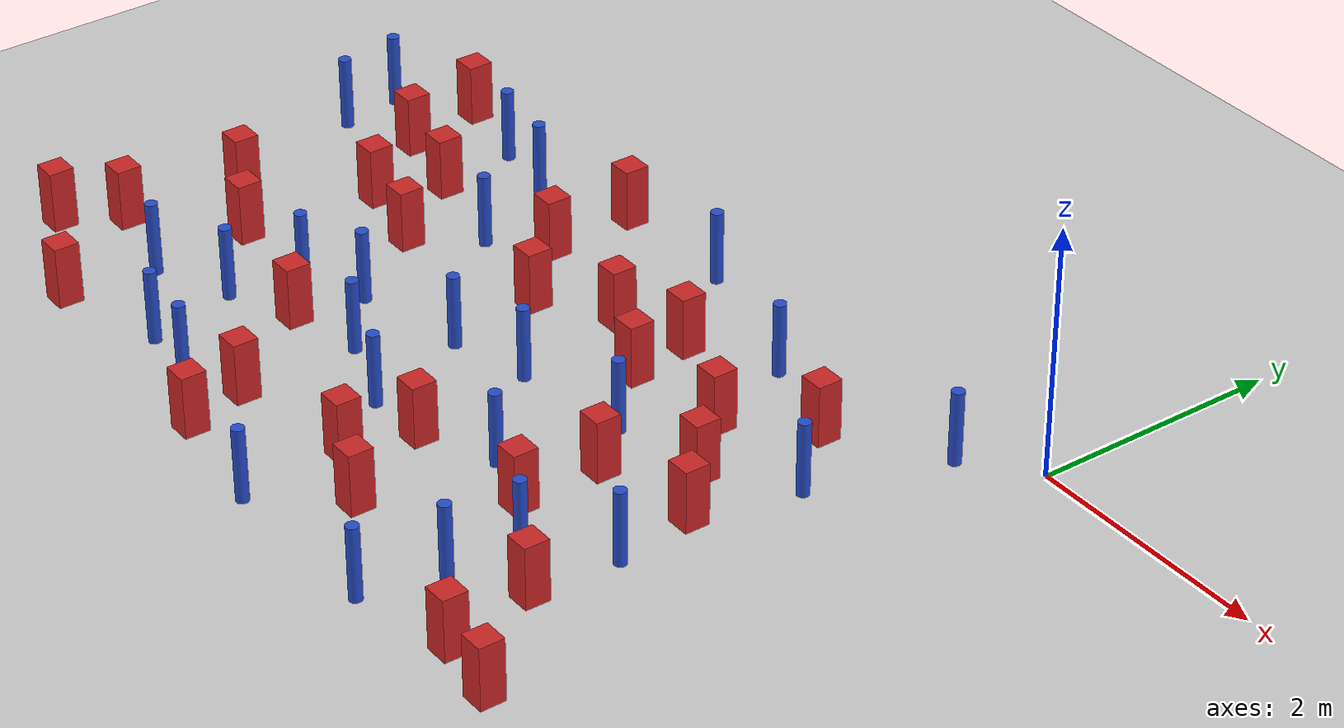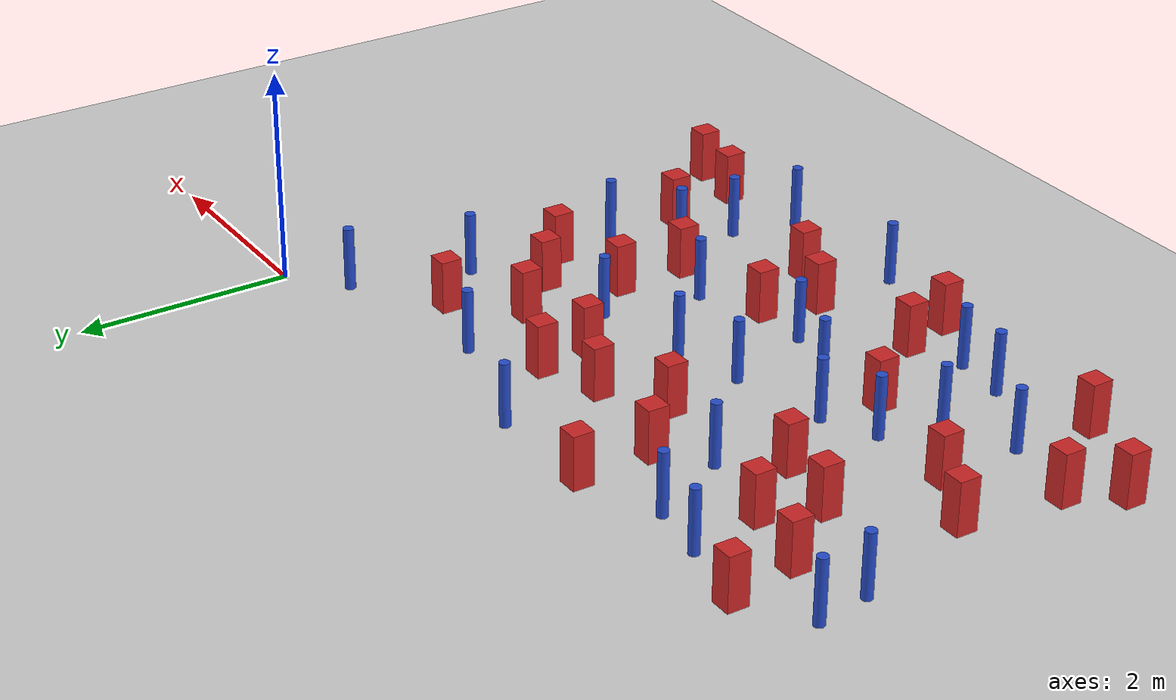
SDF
<sdf version="1.6">
 <world name="default">
  <model name="ground_plane">
   <static>1</static>
   <link name="link">
    <collision name="collision">
     <geometry><plane><normal>0 0 1</normal><size>100 100</size></plane></geometry>
     <surface><friction><ode><mu>100</mu><mu2>50</mu2></ode></friction></surface>
    </collision>
    <visual name="visual">
     <cast_shadows>0</cast_shadows>
     <geometry><plane><normal>0 0 1</normal><size>100 100</size></plane></geometry>
     <material>
      <ambient>1.0 1.0 1.0 1.0</ambient>
      <diffuse>0.8 0.8 0.8 1.0</diffuse>
      <specular>0.01 0.01 0.01 1.000000</specular>
     </material>
    </visual>
   </link>
  </model>
  <model name="pole_obstacle2">
   <static>true</static>
   <pose>-3.00983477498 -4.61173745461 7.38925637345e-09 -8.47170692798e-08 1.24976765033e-08 -1.74513093019e-07</pose>
   <link name="link">
    <pose>0 0 0.3 0 -0 0</pose>
    <inertial>
     <mass>1</mass>
     <inertia><ixx>0.145833</ixx><ixy>0</ixy><ixz>0</ixz><iyy>0.145833</iyy><iyz>0</iyz><izz>0.125</izz></inertia>
    </inertial>
    <collision name="collision">
     <geometry><cylinder><radius>0.05</radius><length>.6</length></cylinder></geometry>
    </collision>
    <visual name="visual">
     <geometry><cylinder><radius>0.05</radius><length>.6</length></cylinder></geometry>
     <material>
      <script><name>Gazebo/Blue</name><uri>file://media/materials/scripts/gazebo.material</uri></script>
     </material>
    </visual>
   </link>
  </model>
  <model name="square_post_obstacle10">
   <static>true</static>
   <pose>-4.72876855023 -3.14238741932 1.91545236811e-07 -7.35059704564e-06 1.12565212e-07 2.39332434364e-05</pose>
   <link name="link">
    <pose>0 0 0.25 0 -0 0</pose>
    <inertial>
     <mass>100</mass>
     <inertia>
      <ixx>0.166667</ixx>
      <ixy>0</ixy>
      <ixz>0</ixz>
      <iyy>0.166667</iyy>
      <iyz>0</iyz>
      <izz>0.166667</izz>
     </inertia>
    </inertial>
    <collision name="collision"><geometry><box><size>.2 .2 .5</size></box></geometry></collision>
    <visual name="visual">
     <geometry><box><size>.2 .2 .5</size></box></geometry>
     <material>
      <script><name>Gazebo/Red</name><uri>file://media/materials/scripts/gazebo.material</uri></script>
     </material>
    </visual>
   </link>
  </model>
  <model name="square_post_obstacle11">
   <static>true</static>
   <pose>-6.29754847552 -1.08779055697 1.91545236811e-07 -7.35059704564e-06 1.12565212e-07 2.39332434364e-05</pose>
   <link name="link">
    <pose>0 0 0.25 0 -0 0</pose>
    <inertial>
     <mass>100</mass>
     <inertia>
      <ixx>0.166667</ixx>
      <ixy>0</ixy>
      <ixz>0</ixz>
      <iyy>0.166667</iyy>
      <iyz>0</iyz>
      <izz>0.166667</izz>
     </inertia>
    </inertial>
    <collision name="collision"><geometry><box><size>.2 .2 .5</size></box></geometry></collision>
    <visual name="visual">
     <geometry><box><size>.2 .2 .5</size></box></geometry>
     <material>
      <script><name>Gazebo/Red</name><uri>file://media/materials/scripts/gazebo.material</uri></script>
     </material>
    </visual>
   </link>
  </model>
  <model name="square_post_obstacle20">
   <static>true</static>
   <pose>-4.38597647848 -1.08295122738 1.91545236811e-07 -7.35059704564e-06 1.12565212e-07 2.39332434364e-05</pose>
   <link name="link">
    <pose>0 0 0.25 0 -0 0</pose>
    <inertial>
     <mass>100</mass>
     <inertia>
      <ixx>0.166667</ixx>
      <ixy>0</ixy>
      <ixz>0</ixz>
      <iyy>0.166667</iyy>
      <iyz>0</iyz>
      <izz>0.166667</izz>
     </inertia>
    </inertial>
    <collision name="collision"><geometry><box><size>.2 .2 .5</size></box></geometry></collision>
    <visual name="visual">
     <geometry><box><size>.2 .2 .5</size></box></geometry>
     <material>
      <script><name>Gazebo/Red</name><uri>file://media/materials/scripts/gazebo.material</uri></script>
     </material>
    </visual>
   </link>
  </model>
  <model name="square_post_obstacle21">
   <static>true</static>
   <pose>-3.87190733849 -1.61479346282 1.91545236811e-07 -7.35059704564e-06 1.12565212e-07 2.39332434364e-05</pose>
   <link name="link">
    <pose>0 0 0.25 0 -0 0</pose>
    <inertial>
     <mass>100</mass>
     <inertia>
      <ixx>0.166667</ixx>
      <ixy>0</ixy>
      <ixz>0</ixz>
      <iyy>0.166667</iyy>
      <iyz>0</iyz>
      <izz>0.166667</izz>
     </inertia>
    </inertial>
    <collision name="collision"><geometry><box><size>.2 .2 .5</size></box></geometry></collision>
    <visual name="visual">
     <geometry><box><size>.2 .2 .5</size></box></geometry>
     <material>
      <script><name>Gazebo/Red</name><uri>file://media/materials/scripts/gazebo.material</uri></script>
     </material>
    </visual>
   </link>
  </model>
  <model name="square_post_obstacle25">
   <static>true</static>
   <pose>-4.4060192597 -0.359610525922 1.91545236811e-07 -7.35059704564e-06 1.12565212e-07 2.39332434364e-05</pose>
   <link name="link">
    <pose>0 0 0.25 0 -0 0</pose>
    <inertial>
     <mass>100</mass>
     <inertia>
      <ixx>0.166667</ixx>
      <ixy>0</ixy>
      <ixz>0</ixz>
      <iyy>0.166667</iyy>
      <iyz>0</iyz>
      <izz>0.166667</izz>
     </inertia>
    </inertial>
    <collision name="collision"><geometry><box><size>.2 .2 .5</size></box></geometry></collision>
    <visual name="visual">
     <geometry><box><size>.2 .2 .5</size></box></geometry>
     <material>
      <script><name>Gazebo/Red</name><uri>file://media/materials/scripts/gazebo.material</uri></script>
     </material>
    </visual>
   </link>
  </model>
  <model name="pole_obstacle24">
   <static>true</static>
   <pose>-2.17715369629 -2.05658296814 7.38925637345e-09 -8.47170692798e-08 1.24976764939e-08 -1.74513093025e-07</pose>
   <link name="link">
    <pose>0 0 0.3 0 -0 0</pose>
    <inertial>
     <mass>1</mass>
     <inertia><ixx>0.145833</ixx><ixy>0</ixy><ixz>0</ixz><iyy>0.145833</iyy><iyz>0</iyz><izz>0.125</izz></inertia>
    </inertial>
    <collision name="collision">
     <geometry><cylinder><radius>0.05</radius><length>.6</length></cylinder></geometry>
    </collision>
    <visual name="visual">
     <geometry><cylinder><radius>0.05</radius><length>.6</length></cylinder></geometry>
     <material>
      <script><name>Gazebo/Blue</name><uri>file://media/materials/scripts/gazebo.material</uri></script>
     </material>
    </visual>
   </link>
  </model>
  <model name="pole_obstacle29">
   <static>true</static>
   <pose>-0.498682928571 -0.406219584729 7.38925637345e-09 -8.47170692798e-08 1.24976764903e-08 -1.74513093025e-07</pose>
   <link name="link">
    <pose>0 0 0.3 0 -0 0</pose>
    <inertial>
     <mass>1</mass>
     <inertia><ixx>0.145833</ixx><ixy>0</ixy><ixz>0</ixz><iyy>0.145833</iyy><iyz>0</iyz><izz>0.125</izz></inertia>
    </inertial>
    <collision name="collision">
     <geometry><cylinder><radius>0.05</radius><length>.6</length></cylinder></geometry>
    </collision>
    <visual name="visual">
     <geometry><cylinder><radius>0.05</radius><length>.6</length></cylinder></geometry>
     <material>
      <script><name>Gazebo/Blue</name><uri>file://media/materials/scripts/gazebo.material</uri></script>
     </material>
    </visual>
   </link>
  </model>
  <model name="square_post_obstacle36">
   <static>true</static>
   <pose>-1.40296125747 -1.92769099587 1.91545236811e-07 -7.35059704564e-06 1.12565212e-07 2.39332434364e-05</pose>
   <link name="link">
    <pose>0 0 0.25 0 -0 0</pose>
    <inertial>
     <mass>100</mass>
     <inertia>
      <ixx>0.166667</ixx>
      <ixy>0</ixy>
      <ixz>0</ixz>
      <iyy>0.166667</iyy>
      <iyz>0</iyz>
      <izz>0.166667</izz>
     </inertia>
    </inertial>
    <collision name="collision"><geometry><box><size>.2 .2 .5</size></box></geometry></collision>
    <visual name="visual">
     <geometry><box><size>.2 .2 .5</size></box></geometry>
     <material>
      <script><name>Gazebo/Red</name><uri>file://media/materials/scripts/gazebo.material</uri></script>
     </material>
    </visual>
   </link>
  </model>
  <model name="square_post_obstacle40">
   <static>true</static>
   <pose>-6.92772482105 -3.87513607403 1.91545236811e-07 -7.35059704564e-06 1.12565212e-07 2.39332434364e-05</pose>
   <link name="link">
    <pose>0 0 0.25 0 -0 0</pose>
    <inertial>
     <mass>100</mass>
     <inertia>
      <ixx>0.166667</ixx>
      <ixy>0</ixy>
      <ixz>0</ixz>
      <iyy>0.166667</iyy>
      <iyz>0</iyz>
      <izz>0.166667</izz>
     </inertia>
    </inertial>
    <collision name="collision"><geometry><box><size>.2 .2 .5</size></box></geometry></collision>
    <visual name="visual">
     <geometry><box><size>.2 .2 .5</size></box></geometry>
     <material>
      <script><name>Gazebo/Red</name><uri>file://media/materials/scripts/gazebo.material</uri></script>
     </material>
    </visual>
   </link>
  </model>
  <model name="square_post_obstacle42">
   <static>true</static>
   <pose>-6.65336086577 -3.44983857737 1.91545236811e-07 -7.35059704564e-06 1.12565212e-07 2.39332434364e-05</pose>
   <link name="link">
    <pose>0 0 0.25 0 -0 0</pose>
    <inertial>
     <mass>100</mass>
     <inertia>
      <ixx>0.166667</ixx>
      <ixy>0</ixy>
      <ixz>0</ixz>
      <iyy>0.166667</iyy>
      <iyz>0</iyz>
      <izz>0.166667</izz>
     </inertia>
    </inertial>
    <collision name="collision"><geometry><box><size>.2 .2 .5</size></box></geometry></collision>
    <visual name="visual">
     <geometry><box><size>.2 .2 .5</size></box></geometry>
     <material>
      <script><name>Gazebo/Red</name><uri>file://media/materials/scripts/gazebo.material</uri></script>
     </material>
    </visual>
   </link>
  </model>
  <model name="square_post_obstacle45">
   <static>true</static>
   <pose>-3.96132576098 -4.46214819886 1.91545236811e-07 -7.35059704564e-06 1.12565212e-07 2.39332434364e-05</pose>
   <link name="link">
    <pose>0 0 0.25 0 -0 0</pose>
    <inertial>
     <mass>100</mass>
     <inertia>
      <ixx>0.166667</ixx>
      <ixy>0</ixy>
      <ixz>0</ixz>
      <iyy>0.166667</iyy>
      <iyz>0</iyz>
      <izz>0.166667</izz>
     </inertia>
    </inertial>
    <collision name="collision"><geometry><box><size>.2 .2 .5</size></box></geometry></collision>
    <visual name="visual">
     <geometry><box><size>.2 .2 .5</size></box></geometry>
     <material>
      <script><name>Gazebo/Red</name><uri>file://media/materials/scripts/gazebo.material</uri></script>
     </material>
    </visual>
   </link>
  </model>
  <model name="square_post_obstacle46">
   <static>true</static>
   <pose>-1.28870673673 -0.963701882219 1.91545236811e-07 -7.35059704564e-06 1.12565212e-07 2.39332434364e-05</pose>
   <link name="link">
    <pose>0 0 0.25 0 -0 0</pose>
    <inertial>
     <mass>100</mass>
     <inertia>
      <ixx>0.166667</ixx>
      <ixy>0</ixy>
      <ixz>0</ixz>
      <iyy>0.166667</iyy>
      <iyz>0</iyz>
      <izz>0.166667</izz>
     </inertia>
    </inertial>
    <collision name="collision"><geometry><box><size>.2 .2 .5</size></box></geometry></collision>
    <visual name="visual">
     <geometry><box><size>.2 .2 .5</size></box></geometry>
     <material>
      <script><name>Gazebo/Red</name><uri>file://media/materials/scripts/gazebo.material</uri></script>
     </material>
    </visual>
   </link>
  </model>
  <model name="square_post_obstacle50">
   <static>true</static>
   <pose>-5.61122834696 -1.24509073403 1.91545236811e-07 -7.35059704564e-06 1.12565212e-07 2.39332434364e-05</pose>
   <link name="link">
    <pose>0 0 0.25 0 -0 0</pose>
    <inertial>
     <mass>100</mass>
     <inertia>
      <ixx>0.166667</ixx>
      <ixy>0</ixy>
      <ixz>0</ixz>
      <iyy>0.166667</iyy>
      <iyz>0</iyz>
      <izz>0.166667</izz>
     </inertia>
    </inertial>
    <collision name="collision"><geometry><box><size>.2 .2 .5</size></box></geometry></collision>
    <visual name="visual">
     <geometry><box><size>.2 .2 .5</size></box></geometry>
     <material>
      <script><name>Gazebo/Red</name><uri>file://media/materials/scripts/gazebo.material</uri></script>
     </material>
    </visual>
   </link>
  </model>
  <model name="square_post_obstacle52">
   <static>true</static>
   <pose>-5.93593023955 -2.82614317043 1.91545236811e-07 -7.35059704564e-06 1.12565212e-07 2.39332434364e-05</pose>
   <link name="link">
    <pose>0 0 0.25 0 -0 0</pose>
    <inertial>
     <mass>100</mass>
     <inertia>
      <ixx>0.166667</ixx>
      <ixy>0</ixy>
      <ixz>0</ixz>
      <iyy>0.166667</iyy>
      <iyz>0</iyz>
      <izz>0.166667</izz>
     </inertia>
    </inertial>
    <collision name="collision"><geometry><box><size>.2 .2 .5</size></box></geometry></collision>
    <visual name="visual">
     <geometry><box><size>.2 .2 .5</size></box></geometry>
     <material>
      <script><name>Gazebo/Red</name><uri>file://media/materials/scripts/gazebo.material</uri></script>
     </material>
    </visual>
   </link>
  </model>
  <model name="square_post_obstacle57">
   <static>true</static>
   <pose>-2.73017724607 -1.06685728491 1.91545236811e-07 -7.35059704564e-06 1.12565212e-07 2.39332434364e-05</pose>
   <link name="link">
    <pose>0 0 0.25 0 -0 0</pose>
    <inertial>
     <mass>100</mass>
     <inertia>
      <ixx>0.166667</ixx>
      <ixy>0</ixy>
      <ixz>0</ixz>
      <iyy>0.166667</iyy>
      <iyz>0</iyz>
      <izz>0.166667</izz>
     </inertia>
    </inertial>
    <collision name="collision"><geometry><box><size>.2 .2 .5</size></box></geometry></collision>
    <visual name="visual">
     <geometry><box><size>.2 .2 .5</size></box></geometry>
     <material>
      <script><name>Gazebo/Red</name><uri>file://media/materials/scripts/gazebo.material</uri></script>
     </material>
    </visual>
   </link>
  </model>
  <model name="square_post_obstacle58">
   <static>true</static>
   <pose>-0.253186446477 -4.47760259966 1.91545236811e-07 -7.35059704564e-06 1.12565212e-07 2.39332434364e-05</pose>
   <link name="link">
    <pose>0 0 0.25 0 -0 0</pose>
    <inertial>
     <mass>100</mass>
     <inertia>
      <ixx>0.166667</ixx>
      <ixy>0</ixy>
      <ixz>0</ixz>
      <iyy>0.166667</iyy>
      <iyz>0</iyz>
      <izz>0.166667</izz>
     </inertia>
    </inertial>
    <collision name="collision"><geometry><box><size>.2 .2 .5</size></box></geometry></collision>
    <visual name="visual">
     <geometry><box><size>.2 .2 .5</size></box></geometry>
     <material>
      <script><name>Gazebo/Red</name><uri>file://media/materials/scripts/gazebo.material</uri></script>
     </material>
    </visual>
   </link>
  </model>
  <model name="square_post_obstacle61">
   <static>true</static>
   <pose>-6.42634662121 -0.419795274852 1.91545236811e-07 -7.35059704564e-06 1.12565212e-07 2.39332434364e-05</pose>
   <link name="link">
    <pose>0 0 0.25 0 -0 0</pose>
    <inertial>
     <mass>100</mass>
     <inertia>
      <ixx>0.166667</ixx>
      <ixy>0</ixy>
      <ixz>0</ixz>
      <iyy>0.166667</iyy>
      <iyz>0</iyz>
      <izz>0.166667</izz>
     </inertia>
    </inertial>
    <collision name="collision"><geometry><box><size>.2 .2 .5</size></box></geometry></collision>
    <visual name="visual">
     <geometry><box><size>.2 .2 .5</size></box></geometry>
     <material>
      <script><name>Gazebo/Red</name><uri>file://media/materials/scripts/gazebo.material</uri></script>
     </material>
    </visual>
   </link>
  </model>
  <model name="pole_obstacle83">
   <static>true</static>
   <pose>-4.12613707402 -3.00219053315 7.38925637345e-09 -8.47170692798e-08 1.24976764937e-08 -1.74513093023e-07</pose>
   <link name="link">
    <pose>0 0 0.3 0 -0 0</pose>
    <inertial>
     <mass>1</mass>
     <inertia><ixx>0.145833</ixx><ixy>0</ixy><ixz>0</ixz><iyy>0.145833</iyy><iyz>0</iyz><izz>0.125</izz></inertia>
    </inertial>
    <collision name="collision">
     <geometry><cylinder><radius>0.05</radius><length>.6</length></cylinder></geometry>
    </collision>
    <visual name="visual">
     <geometry><cylinder><radius>0.05</radius><length>.6</length></cylinder></geometry>
     <material>
      <script><name>Gazebo/Blue</name><uri>file://media/materials/scripts/gazebo.material</uri></script>
     </material>
    </visual>
   </link>
  </model>
  <model name="square_post_obstacle81">
   <static>true</static>
   <pose>-0.948691478601 -3.65484917568 1.91545236811e-07 -7.35059704564e-06 1.12565212e-07 2.39332434364e-05</pose>
   <link name="link">
    <pose>0 0 0.25 0 -0 0</pose>
    <inertial>
     <mass>100</mass>
     <inertia>
      <ixx>0.166667</ixx>
      <ixy>0</ixy>
      <ixz>0</ixz>
      <iyy>0.166667</iyy>
      <iyz>0</iyz>
      <izz>0.166667</izz>
     </inertia>
    </inertial>
    <collision name="collision"><geometry><box><size>.2 .2 .5</size></box></geometry></collision>
    <visual name="visual">
     <geometry><box><size>.2 .2 .5</size></box></geometry>
     <material>
      <script><name>Gazebo/Red</name><uri>file://media/materials/scripts/gazebo.material</uri></script>
     </material>
    </visual>
   </link>
  </model>
  <model name="square_post_obstacle82">
   <static>true</static>
   <pose>-1.82060947756 -1.46836751857 1.91545236811e-07 -7.35059704564e-06 1.12565212e-07 2.39332434364e-05</pose>
   <link name="link">
    <pose>0 0 0.25 0 -0 0</pose>
    <inertial>
     <mass>100</mass>
     <inertia>
      <ixx>0.166667</ixx>
      <ixy>0</ixy>
      <ixz>0</ixz>
      <iyy>0.166667</iyy>
      <iyz>0</iyz>
      <izz>0.166667</izz>
     </inertia>
    </inertial>
    <collision name="collision"><geometry><box><size>.2 .2 .5</size></box></geometry></collision>
    <visual name="visual">
     <geometry><box><size>.2 .2 .5</size></box></geometry>
     <material>
      <script><name>Gazebo/Red</name><uri>file://media/materials/scripts/gazebo.material</uri></script>
     </material>
    </visual>
   </link>
  </model>
  <model name="pole_obstacle97">
   <static>true</static>
   <pose>-3.33977045674 -0.333271730781 7.38925637345e-09 -8.471706928e-08 1.24976765172e-08 -1.74513093013e-07</pose>
   <link name="link">
    <pose>0 0 0.3 0 -0 0</pose>
    <inertial>
     <mass>1</mass>
     <inertia><ixx>0.145833</ixx><ixy>0</ixy><ixz>0</ixz><iyy>0.145833</iyy><iyz>0</iyz><izz>0.125</izz></inertia>
    </inertial>
    <collision name="collision">
     <geometry><cylinder><radius>0.05</radius><length>.6</length></cylinder></geometry>
    </collision>
    <visual name="visual">
     <geometry><cylinder><radius>0.05</radius><length>.6</length></cylinder></geometry>
     <material>
      <script><name>Gazebo/Blue</name><uri>file://media/materials/scripts/gazebo.material</uri></script>
     </material>
    </visual>
   </link>
  </model>
  <model name="pole_obstacle100">
   <static>true</static>
   <pose>-1.61396453804 -4.58292001149 7.38925637345e-09 -8.47170692799e-08 1.24976765033e-08 -1.74513093018e-07</pose>
   <link name="link">
    <pose>0 0 0.3 0 -0 0</pose>
    <inertial>
     <mass>1</mass>
     <inertia><ixx>0.145833</ixx><ixy>0</ixy><ixz>0</ixz><iyy>0.145833</iyy><iyz>0</iyz><izz>0.125</izz></inertia>
    </inertial>
    <collision name="collision">
     <geometry><cylinder><radius>0.05</radius><length>.6</length></cylinder></geometry>
    </collision>
    <visual name="visual">
     <geometry><cylinder><radius>0.05</radius><length>.6</length></cylinder></geometry>
     <material>
      <script><name>Gazebo/Blue</name><uri>file://media/materials/scripts/gazebo.material</uri></script>
     </material>
    </visual>
   </link>
  </model>
  <model name="square_post_obstacle95">
   <static>true</static>
   <pose>-0.796163584863 -4.39017742843 1.91545236811e-07 -7.35059704564e-06 1.12565212e-07 2.39332434364e-05</pose>
   <link name="link">
    <pose>0 0 0.25 0 -0 0</pose>
    <inertial>
     <mass>100</mass>
     <inertia>
      <ixx>0.166667</ixx>
      <ixy>0</ixy>
      <ixz>0</ixz>
      <iyy>0.166667</iyy>
      <iyz>0</iyz>
      <izz>0.166667</izz>
     </inertia>
    </inertial>
    <collision name="collision"><geometry><box><size>.2 .2 .5</size></box></geometry></collision>
    <visual name="visual">
     <geometry><box><size>.2 .2 .5</size></box></geometry>
     <material>
      <script><name>Gazebo/Red</name><uri>file://media/materials/scripts/gazebo.material</uri></script>
     </material>
    </visual>
   </link>
  </model>
  <model name="pole_obstacle108">
   <static>true</static>
   <pose>-2.3449771813 -2.9719491858 7.38925637345e-09 -8.47170692798e-08 1.24976764939e-08 -1.74513093025e-07</pose>
   <link name="link">
    <pose>0 0 0.3 0 -0 0</pose>
    <inertial>
     <mass>1</mass>
     <inertia><ixx>0.145833</ixx><ixy>0</ixy><ixz>0</ixz><iyy>0.145833</iyy><iyz>0</iyz><izz>0.125</izz></inertia>
    </inertial>
    <collision name="collision">
     <geometry><cylinder><radius>0.05</radius><length>.6</length></cylinder></geometry>
    </collision>
    <visual name="visual">
     <geometry><cylinder><radius>0.05</radius><length>.6</length></cylinder></geometry>
     <material>
      <script><name>Gazebo/Blue</name><uri>file://media/materials/scripts/gazebo.material</uri></script>
     </material>
    </visual>
   </link>
  </model>
  <model name="pole_obstacle111">
   <static>true</static>
   <pose>-0.912581553082 -2.94833649301 7.38925637345e-09 -8.47170692799e-08 1.2497676509e-08 -1.74513093016e-07</pose>
   <link name="link">
    <pose>0 0 0.3 0 -0 0</pose>
    <inertial>
     <mass>1</mass>
     <inertia><ixx>0.145833</ixx><ixy>0</ixy><ixz>0</ixz><iyy>0.145833</iyy><iyz>0</iyz><izz>0.125</izz></inertia>
    </inertial>
    <collision name="collision">
     <geometry><cylinder><radius>0.05</radius><length>.6</length></cylinder></geometry>
    </collision>
    <visual name="visual">
     <geometry><cylinder><radius>0.05</radius><length>.6</length></cylinder></geometry>
     <material>
      <script><name>Gazebo/Blue</name><uri>file://media/materials/scripts/gazebo.material</uri></script>
     </material>
    </visual>
   </link>
  </model>
  <model name="pole_obstacle130">
   <static>true</static>
   <pose>-6.98461075504 -0.814319782715 7.38925637345e-09 -8.47170692799e-08 1.24976765038e-08 -1.74513093018e-07</pose>
   <link name="link">
    <pose>0 0 0.3 0 -0 0</pose>
    <inertial>
     <mass>1</mass>
     <inertia><ixx>0.145833</ixx><ixy>0</ixy><ixz>0</ixz><iyy>0.145833</iyy><iyz>0</iyz><izz>0.125</izz></inertia>
    </inertial>
    <collision name="collision">
     <geometry><cylinder><radius>0.05</radius><length>.6</length></cylinder></geometry>
    </collision>
    <visual name="visual">
     <geometry><cylinder><radius>0.05</radius><length>.6</length></cylinder></geometry>
     <material>
      <script><name>Gazebo/Blue</name><uri>file://media/materials/scripts/gazebo.material</uri></script>
     </material>
    </visual>
   </link>
  </model>
  <model name="pole_obstacle131">
   <static>true</static>
   <pose>-3.10898596342 -2.21792573306 7.38925637345e-09 -8.471706928e-08 1.24976765098e-08 -1.74513093016e-07</pose>
   <link name="link">
    <pose>0 0 0.3 0 -0 0</pose>
    <inertial>
     <mass>1</mass>
     <inertia><ixx>0.145833</ixx><ixy>0</ixy><ixz>0</ixz><iyy>0.145833</iyy><iyz>0</iyz><izz>0.125</izz></inertia>
    </inertial>
    <collision name="collision">
     <geometry><cylinder><radius>0.05</radius><length>.6</length></cylinder></geometry>
    </collision>
    <visual name="visual">
     <geometry><cylinder><radius>0.05</radius><length>.6</length></cylinder></geometry>
     <material>
      <script><name>Gazebo/Blue</name><uri>file://media/materials/scripts/gazebo.material</uri></script>
     </material>
    </visual>
   </link>
  </model>
  <model name="pole_obstacle134">
   <static>true</static>
   <pose>-5.88940142691 -3.6348307558 7.38925637345e-09 -8.47170692798e-08 1.24976764937e-08 -1.74513093023e-07</pose>
   <link name="link">
    <pose>0 0 0.3 0 -0 0</pose>
    <inertial>
     <mass>1</mass>
     <inertia><ixx>0.145833</ixx><ixy>0</ixy><ixz>0</ixz><iyy>0.145833</iyy><iyz>0</iyz><izz>0.125</izz></inertia>
    </inertial>
    <collision name="collision">
     <geometry><cylinder><radius>0.05</radius><length>.6</length></cylinder></geometry>
    </collision>
    <visual name="visual">
     <geometry><cylinder><radius>0.05</radius><length>.6</length></cylinder></geometry>
     <material>
      <script><name>Gazebo/Blue</name><uri>file://media/materials/scripts/gazebo.material</uri></script>
     </material>
    </visual>
   </link>
  </model>
  <model name="pole_obstacle137">
   <static>true</static>
   <pose>-3.45365333767 -3.25338982729 7.38925637345e-09 -8.47170692798e-08 1.24976764939e-08 -1.74513093025e-07</pose>
   <link name="link">
    <pose>0 0 0.3 0 -0 0</pose>
    <inertial>
     <mass>1</mass>
     <inertia><ixx>0.145833</ixx><ixy>0</ixy><ixz>0</ixz><iyy>0.145833</iyy><iyz>0</iyz><izz>0.125</izz></inertia>
    </inertial>
    <collision name="collision">
     <geometry><cylinder><radius>0.05</radius><length>.6</length></cylinder></geometry>
    </collision>
    <visual name="visual">
     <geometry><cylinder><radius>0.05</radius><length>.6</length></cylinder></geometry>
     <material>
      <script><name>Gazebo/Blue</name><uri>file://media/materials/scripts/gazebo.material</uri></script>
     </material>
    </visual>
   </link>
  </model>
  <model name="square_post_obstacle120">
   <static>true</static>
   <pose>-1.83946257987 -2.45120630772 1.91545236811e-07 -7.35059704564e-06 1.12565212e-07 2.39332434364e-05</pose>
   <link name="link">
    <pose>0 0 0.25 0 -0 0</pose>
    <inertial>
     <mass>100</mass>
     <inertia>
      <ixx>0.166667</ixx>
      <ixy>0</ixy>
      <ixz>0</ixz>
      <iyy>0.166667</iyy>
      <iyz>0</iyz>
      <izz>0.166667</izz>
     </inertia>
    </inertial>
    <collision name="collision"><geometry><box><size>.2 .2 .5</size></box></geometry></collision>
    <visual name="visual">
     <geometry><box><size>.2 .2 .5</size></box></geometry>
     <material>
      <script><name>Gazebo/Red</name><uri>file://media/materials/scripts/gazebo.material</uri></script>
     </material>
    </visual>
   </link>
  </model>
  <model name="square_post_obstacle126">
   <static>true</static>
   <pose>-3.06288888267 -3.76383759316 1.91545236811e-07 -7.35059704564e-06 1.12565212e-07 2.39332434364e-05</pose>
   <link name="link">
    <pose>0 0 0.25 0 -0 0</pose>
    <inertial>
     <mass>100</mass>
     <inertia>
      <ixx>0.166667</ixx>
      <ixy>0</ixy>
      <ixz>0</ixz>
      <iyy>0.166667</iyy>
      <iyz>0</iyz>
      <izz>0.166667</izz>
     </inertia>
    </inertial>
    <collision name="collision"><geometry><box><size>.2 .2 .5</size></box></geometry></collision>
    <visual name="visual">
     <geometry><box><size>.2 .2 .5</size></box></geometry>
     <material>
      <script><name>Gazebo/Red</name><uri>file://media/materials/scripts/gazebo.material</uri></script>
     </material>
    </visual>
   </link>
  </model>
  <model name="pole_obstacle142">
   <static>true</static>
   <pose>-5.27689374266 -3.36900556618 7.38925637345e-09 -8.47170692798e-08 1.24976764937e-08 -1.74513093023e-07</pose>
   <link name="link">
    <pose>0 0 0.3 0 -0 0</pose>
    <inertial>
     <mass>1</mass>
     <inertia><ixx>0.145833</ixx><ixy>0</ixy><ixz>0</ixz><iyy>0.145833</iyy><iyz>0</iyz><izz>0.125</izz></inertia>
    </inertial>
    <collision name="collision">
     <geometry><cylinder><radius>0.05</radius><length>.6</length></cylinder></geometry>
    </collision>
    <visual name="visual">
     <geometry><cylinder><radius>0.05</radius><length>.6</length></cylinder></geometry>
     <material>
      <script><name>Gazebo/Blue</name><uri>file://media/materials/scripts/gazebo.material</uri></script>
     </material>
    </visual>
   </link>
  </model>
  <model name="square_post_obstacle132">
   <static>true</static>
   <pose>-5.96324787482 -4.36023068476 1.91545236811e-07 -7.35059704564e-06 1.12565212e-07 2.39332434364e-05</pose>
   <link name="link">
    <pose>0 0 0.25 0 -0 0</pose>
    <inertial>
     <mass>100</mass>
     <inertia>
      <ixx>0.166667</ixx>
      <ixy>0</ixy>
      <ixz>0</ixz>
      <iyy>0.166667</iyy>
      <iyz>0</iyz>
      <izz>0.166667</izz>
     </inertia>
    </inertial>
    <collision name="collision"><geometry><box><size>.2 .2 .5</size></box></geometry></collision>
    <visual name="visual">
     <geometry><box><size>.2 .2 .5</size></box></geometry>
     <material>
      <script><name>Gazebo/Red</name><uri>file://media/materials/scripts/gazebo.material</uri></script>
     </material>
    </visual>
   </link>
  </model>
  <model name="pole_obstacle144">
   <static>true</static>
   <pose>-3.7522547191 -2.38470081572 7.38925637345e-09 -8.471706928e-08 1.24976765098e-08 -1.74513093016e-07</pose>
   <link name="link">
    <pose>0 0 0.3 0 -0 0</pose>
    <inertial>
     <mass>1</mass>
     <inertia><ixx>0.145833</ixx><ixy>0</ixy><ixz>0</ixz><iyy>0.145833</iyy><iyz>0</iyz><izz>0.125</izz></inertia>
    </inertial>
    <collision name="collision">
     <geometry><cylinder><radius>0.05</radius><length>.6</length></cylinder></geometry>
    </collision>
    <visual name="visual">
     <geometry><cylinder><radius>0.05</radius><length>.6</length></cylinder></geometry>
     <material>
      <script><name>Gazebo/Blue</name><uri>file://media/materials/scripts/gazebo.material</uri></script>
     </material>
    </visual>
   </link>
  </model>
  <model name="pole_obstacle149">
   <static>true</static>
   <pose>-1.46560477682 -3.96450264504 7.38925637345e-09 -8.471706928e-08 1.24976765103e-08 -1.74513093014e-07</pose>
   <link name="link">
    <pose>0 0 0.3 0 -0 0</pose>
    <inertial>
     <mass>1</mass>
     <inertia><ixx>0.145833</ixx><ixy>0</ixy><ixz>0</ixz><iyy>0.145833</iyy><iyz>0</iyz><izz>0.125</izz></inertia>
    </inertial>
    <collision name="collision">
     <geometry><cylinder><radius>0.05</radius><length>.6</length></cylinder></geometry>
    </collision>
    <visual name="visual">
     <geometry><cylinder><radius>0.05</radius><length>.6</length></cylinder></geometry>
     <material>
      <script><name>Gazebo/Blue</name><uri>file://media/materials/scripts/gazebo.material</uri></script>
     </material>
    </visual>
   </link>
  </model>
  <model name="square_post_obstacle143">
   <static>true</static>
   <pose>-5.14301812404 -1.90098830644 1.91545236811e-07 -7.35059704564e-06 1.12565212e-07 2.39332434364e-05</pose>
   <link name="link">
    <pose>0 0 0.25 0 -0 0</pose>
    <inertial>
     <mass>100</mass>
     <inertia>
      <ixx>0.166667</ixx>
      <ixy>0</ixy>
      <ixz>0</ixz>
      <iyy>0.166667</iyy>
      <iyz>0</iyz>
      <izz>0.166667</izz>
     </inertia>
    </inertial>
    <collision name="collision"><geometry><box><size>.2 .2 .5</size></box></geometry></collision>
    <visual name="visual">
     <geometry><box><size>.2 .2 .5</size></box></geometry>
     <material>
      <script><name>Gazebo/Red</name><uri>file://media/materials/scripts/gazebo.material</uri></script>
     </material>
    </visual>
   </link>
  </model>
  <model name="square_post_obstacle145">
   <static>true</static>
   <pose>-5.80441305349 -1.74786386733 1.91545236811e-07 -7.35059704564e-06 1.12565212e-07 2.39332434364e-05</pose>
   <link name="link">
    <pose>0 0 0.25 0 -0 0</pose>
    <inertial>
     <mass>100</mass>
     <inertia>
      <ixx>0.166667</ixx>
      <ixy>0</ixy>
      <ixz>0</ixz>
      <iyy>0.166667</iyy>
      <iyz>0</iyz>
      <izz>0.166667</izz>
     </inertia>
    </inertial>
    <collision name="collision"><geometry><box><size>.2 .2 .5</size></box></geometry></collision>
    <visual name="visual">
     <geometry><box><size>.2 .2 .5</size></box></geometry>
     <material>
      <script><name>Gazebo/Red</name><uri>file://media/materials/scripts/gazebo.material</uri></script>
     </material>
    </visual>
   </link>
  </model>
  <model name="square_post_obstacle147">
   <static>true</static>
   <pose>-4.10517291901 -3.95859161224 1.91545236811e-07 -7.35059704564e-06 1.12565212e-07 2.39332434364e-05</pose>
   <link name="link">
    <pose>0 0 0.25 0 -0 0</pose>
    <inertial>
     <mass>100</mass>
     <inertia>
      <ixx>0.166667</ixx>
      <ixy>0</ixy>
      <ixz>0</ixz>
      <iyy>0.166667</iyy>
      <iyz>0</iyz>
      <izz>0.166667</izz>
     </inertia>
    </inertial>
    <collision name="collision"><geometry><box><size>.2 .2 .5</size></box></geometry></collision>
    <visual name="visual">
     <geometry><box><size>.2 .2 .5</size></box></geometry>
     <material>
      <script><name>Gazebo/Red</name><uri>file://media/materials/scripts/gazebo.material</uri></script>
     </material>
    </visual>
   </link>
  </model>
  <model name="pole_obstacle157">
   <static>true</static>
   <pose>-5.72984986698 -0.571012054811 7.38925637345e-09 -8.47170692799e-08 1.24976765038e-08 -1.74513093018e-07</pose>
   <link name="link">
    <pose>0 0 0.3 0 -0 0</pose>
    <inertial>
     <mass>1</mass>
     <inertia><ixx>0.145833</ixx><ixy>0</ixy><ixz>0</ixz><iyy>0.145833</iyy><iyz>0</iyz><izz>0.125</izz></inertia>
    </inertial>
    <collision name="collision">
     <geometry><cylinder><radius>0.05</radius><length>.6</length></cylinder></geometry>
    </collision>
    <visual name="visual">
     <geometry><cylinder><radius>0.05</radius><length>.6</length></cylinder></geometry>
     <material>
      <script><name>Gazebo/Blue</name><uri>file://media/materials/scripts/gazebo.material</uri></script>
     </material>
    </visual>
   </link>
  </model>
  <model name="pole_obstacle171">
   <static>true</static>
   <pose>-4.78066928083 -1.42861705596 7.38925637345e-09 -8.471706928e-08 1.24976765134e-08 -1.74513093015e-07</pose>
   <link name="link">
    <pose>0 0 0.3 0 -0 0</pose>
    <inertial>
     <mass>1</mass>
     <inertia><ixx>0.145833</ixx><ixy>0</ixy><ixz>0</ixz><iyy>0.145833</iyy><iyz>0</iyz><izz>0.125</izz></inertia>
    </inertial>
    <collision name="collision">
     <geometry><cylinder><radius>0.05</radius><length>.6</length></cylinder></geometry>
    </collision>
    <visual name="visual">
     <geometry><cylinder><radius>0.05</radius><length>.6</length></cylinder></geometry>
     <material>
      <script><name>Gazebo/Blue</name><uri>file://media/materials/scripts/gazebo.material</uri></script>
     </material>
    </visual>
   </link>
  </model>
  <model name="square_post_obstacle162">
   <static>true</static>
   <pose>-1.84395035219 -3.12872646865 1.91545236811e-07 -7.35059704564e-06 1.12565212e-07 2.39332434364e-05</pose>
   <link name="link">
    <pose>0 0 0.25 0 -0 0</pose>
    <inertial>
     <mass>100</mass>
     <inertia>
      <ixx>0.166667</ixx>
      <ixy>0</ixy>
      <ixz>0</ixz>
      <iyy>0.166667</iyy>
      <iyz>0</iyz>
      <izz>0.166667</izz>
     </inertia>
    </inertial>
    <collision name="collision"><geometry><box><size>.2 .2 .5</size></box></geometry></collision>
    <visual name="visual">
     <geometry><box><size>.2 .2 .5</size></box></geometry>
     <material>
      <script><name>Gazebo/Red</name><uri>file://media/materials/scripts/gazebo.material</uri></script>
     </material>
    </visual>
   </link>
  </model>
  <model name="pole_obstacle172">
   <static>true</static>
   <pose>-4.65162458032 -2.58448816166 7.38925637345e-09 -8.47170692798e-08 1.24976764937e-08 -1.74513093023e-07</pose>
   <link name="link">
    <pose>0 0 0.3 0 -0 0</pose>
    <inertial>
     <mass>1</mass>
     <inertia><ixx>0.145833</ixx><ixy>0</ixy><ixz>0</ixz><iyy>0.145833</iyy><iyz>0</iyz><izz>0.125</izz></inertia>
    </inertial>
    <collision name="collision">
     <geometry><cylinder><radius>0.05</radius><length>.6</length></cylinder></geometry>
    </collision>
    <visual name="visual">
     <geometry><cylinder><radius>0.05</radius><length>.6</length></cylinder></geometry>
     <material>
      <script><name>Gazebo/Blue</name><uri>file://media/materials/scripts/gazebo.material</uri></script>
     </material>
    </visual>
   </link>
  </model>
  <model name="pole_obstacle176">
   <static>true</static>
   <pose>-4.5795393593 -4.16228945474 7.38925637345e-09 -8.47170692796e-08 1.24976764786e-08 -1.74513093032e-07</pose>
   <link name="link">
    <pose>0 0 0.3 0 -0 0</pose>
    <inertial>
     <mass>1</mass>
     <inertia><ixx>0.145833</ixx><ixy>0</ixy><ixz>0</ixz><iyy>0.145833</iyy><iyz>0</iyz><izz>0.125</izz></inertia>
    </inertial>
    <collision name="collision">
     <geometry><cylinder><radius>0.05</radius><length>.6</length></cylinder></geometry>
    </collision>
    <visual name="visual">
     <geometry><cylinder><radius>0.05</radius><length>.6</length></cylinder></geometry>
     <material>
      <script><name>Gazebo/Blue</name><uri>file://media/materials/scripts/gazebo.material</uri></script>
     </material>
    </visual>
   </link>
  </model>
  <model name="square_post_obstacle165">
   <static>true</static>
   <pose>-3.30871160211 -1.26060825113 1.91545236811e-07 -7.35059704564e-06 1.12565212e-07 2.39332434364e-05</pose>
   <link name="link">
    <pose>0 0 0.25 0 -0 0</pose>
    <inertial>
     <mass>100</mass>
     <inertia>
      <ixx>0.166667</ixx>
      <ixy>0</ixy>
      <ixz>0</ixz>
      <iyy>0.166667</iyy>
      <iyz>0</iyz>
      <izz>0.166667</izz>
     </inertia>
    </inertial>
    <collision name="collision"><geometry><box><size>.2 .2 .5</size></box></geometry></collision>
    <visual name="visual">
     <geometry><box><size>.2 .2 .5</size></box></geometry>
     <material>
      <script><name>Gazebo/Red</name><uri>file://media/materials/scripts/gazebo.material</uri></script>
     </material>
    </visual>
   </link>
  </model>
  <model name="square_post_obstacle170">
   <static>true</static>
   <pose>-2.65313511585 -1.57869718813 1.91545236811e-07 -7.35059704564e-06 1.12565212e-07 2.39332434364e-05</pose>
   <link name="link">
    <pose>0 0 0.25 0 -0 0</pose>
    <inertial>
     <mass>100</mass>
     <inertia>
      <ixx>0.166667</ixx>
      <ixy>0</ixy>
      <ixz>0</ixz>
      <iyy>0.166667</iyy>
      <iyz>0</iyz>
      <izz>0.166667</izz>
     </inertia>
    </inertial>
    <collision name="collision"><geometry><box><size>.2 .2 .5</size></box></geometry></collision>
    <visual name="visual">
     <geometry><box><size>.2 .2 .5</size></box></geometry>
     <material>
      <script><name>Gazebo/Red</name><uri>file://media/materials/scripts/gazebo.material</uri></script>
     </material>
    </visual>
   </link>
  </model>
  <model name="square_post_obstacle171">
   <static>true</static>
   <pose>-2.49770466416 -4.02332177137 1.91545236811e-07 -7.35059704564e-06 1.12565212e-07 2.39332434364e-05</pose>
   <link name="link">
    <pose>0 0 0.25 0 -0 0</pose>
    <inertial>
     <mass>100</mass>
     <inertia>
      <ixx>0.166667</ixx>
      <ixy>0</ixy>
      <ixz>0</ixz>
      <iyy>0.166667</iyy>
      <iyz>0</iyz>
      <izz>0.166667</izz>
     </inertia>
    </inertial>
    <collision name="collision"><geometry><box><size>.2 .2 .5</size></box></geometry></collision>
    <visual name="visual">
     <geometry><box><size>.2 .2 .5</size></box></geometry>
     <material>
      <script><name>Gazebo/Red</name><uri>file://media/materials/scripts/gazebo.material</uri></script>
     </material>
    </visual>
   </link>
  </model>
  <model name="square_post_obstacle180">
   <static>true</static>
   <pose>-6.53277661194 -2.49790345805 1.91545236811e-07 -7.35059704564e-06 1.12565212e-07 2.39332434364e-05</pose>
   <link name="link">
    <pose>0 0 0.25 0 -0 0</pose>
    <inertial>
     <mass>100</mass>
     <inertia>
      <ixx>0.166667</ixx>
      <ixy>0</ixy>
      <ixz>0</ixz>
      <iyy>0.166667</iyy>
      <iyz>0</iyz>
      <izz>0.166667</izz>
     </inertia>
    </inertial>
    <collision name="collision"><geometry><box><size>.2 .2 .5</size></box></geometry></collision>
    <visual name="visual">
     <geometry><box><size>.2 .2 .5</size></box></geometry>
     <material>
      <script><name>Gazebo/Red</name><uri>file://media/materials/scripts/gazebo.material</uri></script>
     </material>
    </visual>
   </link>
  </model>
  <model name="pole_obstacle195">
   <static>true</static>
   <pose>-5.12925075468 -2.8157279054 7.38925637345e-09 -8.47170692798e-08 1.24976764937e-08 -1.74513093023e-07</pose>
   <link name="link">
    <pose>0 0 0.3 0 -0 0</pose>
    <inertial>
     <mass>1</mass>
     <inertia><ixx>0.145833</ixx><ixy>0</ixy><ixz>0</ixz><iyy>0.145833</iyy><iyz>0</iyz><izz>0.125</izz></inertia>
    </inertial>
    <collision name="collision">
     <geometry><cylinder><radius>0.05</radius><length>.6</length></cylinder></geometry>
    </collision>
    <visual name="visual">
     <geometry><cylinder><radius>0.05</radius><length>.6</length></cylinder></geometry>
     <material>
      <script><name>Gazebo/Blue</name><uri>file://media/materials/scripts/gazebo.material</uri></script>
     </material>
    </visual>
   </link>
  </model>
  <model name="pole_obstacle197">
   <static>true</static>
   <pose>-2.08687930544 -0.715819893114 7.38925637345e-09 -8.471706928e-08 1.24976765177e-08 -1.74513093012e-07</pose>
   <link name="link">
    <pose>0 0 0.3 0 -0 0</pose>
    <inertial>
     <mass>1</mass>
     <inertia><ixx>0.145833</ixx><ixy>0</ixy><ixz>0</ixz><iyy>0.145833</iyy><iyz>0</iyz><izz>0.125</izz></inertia>
    </inertial>
    <collision name="collision">
     <geometry><cylinder><radius>0.05</radius><length>.6</length></cylinder></geometry>
    </collision>
    <visual name="visual">
     <geometry><cylinder><radius>0.05</radius><length>.6</length></cylinder></geometry>
     <material>
      <script><name>Gazebo/Blue</name><uri>file://media/materials/scripts/gazebo.material</uri></script>
     </material>
    </visual>
   </link>
  </model>
  <model name="square_post_obstacle210">
   <static>true</static>
   <pose>-1.01527611357 -2.30635193267 1.91545236811e-07 -7.35059704564e-06 1.12565212e-07 2.39332434364e-05</pose>
   <link name="link">
    <pose>0 0 0.25 0 -0 0</pose>
    <inertial>
     <mass>100</mass>
     <inertia>
      <ixx>0.166667</ixx>
      <ixy>0</ixy>
      <ixz>0</ixz>
      <iyy>0.166667</iyy>
      <iyz>0</iyz>
      <izz>0.166667</izz>
     </inertia>
    </inertial>
    <collision name="collision"><geometry><box><size>.2 .2 .5</size></box></geometry></collision>
    <visual name="visual">
     <geometry><box><size>.2 .2 .5</size></box></geometry>
     <material>
      <script><name>Gazebo/Red</name><uri>file://media/materials/scripts/gazebo.material</uri></script>
     </material>
    </visual>
   </link>
  </model>
  <model name="square_post_obstacle216">
   <static>true</static>
   <pose>-2.92233646716 -3.23745787055 1.91545236811e-07 -7.35059704564e-06 1.12565212e-07 2.39332434364e-05</pose>
   <link name="link">
    <pose>0 0 0.25 0 -0 0</pose>
    <inertial>
     <mass>100</mass>
     <inertia>
      <ixx>0.166667</ixx>
      <ixy>0</ixy>
      <ixz>0</ixz>
      <iyy>0.166667</iyy>
      <iyz>0</iyz>
      <izz>0.166667</izz>
     </inertia>
    </inertial>
    <collision name="collision"><geometry><box><size>.2 .2 .5</size></box></geometry></collision>
    <visual name="visual">
     <geometry><box><size>.2 .2 .5</size></box></geometry>
     <material>
      <script><name>Gazebo/Red</name><uri>file://media/materials/scripts/gazebo.material</uri></script>
     </material>
    </visual>
   </link>
  </model>
  <model name="pole_obstacle201">
   <static>true</static>
   <pose>-0.823366072235 -1.48057880124 7.38925637345e-09 -8.47170692799e-08 1.24976765033e-08 -1.7451309302e-07</pose>
   <link name="link">
    <pose>0 0 0.3 0 -0 0</pose>
    <inertial>
     <mass>1</mass>
     <inertia><ixx>0.145833</ixx><ixy>0</ixy><ixz>0</ixz><iyy>0.145833</iyy><iyz>0</iyz><izz>0.125</izz></inertia>
    </inertial>
    <collision name="collision">
     <geometry><cylinder><radius>0.05</radius><length>.6</length></cylinder></geometry>
    </collision>
    <visual name="visual">
     <geometry><cylinder><radius>0.05</radius><length>.6</length></cylinder></geometry>
     <material>
      <script><name>Gazebo/Blue</name><uri>file://media/materials/scripts/gazebo.material</uri></script>
     </material>
    </visual>
   </link>
  </model>
  <model name="pole_obstacle203">
   <static>true</static>
   <pose>-6.8995912785 -1.31830824905 7.38925637345e-09 -8.471706928e-08 1.24976765134e-08 -1.74513093015e-07</pose>
   <link name="link">
    <pose>0 0 0.3 0 -0 0</pose>
    <inertial>
     <mass>1</mass>
     <inertia><ixx>0.145833</ixx><ixy>0</ixy><ixz>0</ixz><iyy>0.145833</iyy><iyz>0</iyz><izz>0.125</izz></inertia>
    </inertial>
    <collision name="collision">
     <geometry><cylinder><radius>0.05</radius><length>.6</length></cylinder></geometry>
    </collision>
    <visual name="visual">
     <geometry><cylinder><radius>0.05</radius><length>.6</length></cylinder></geometry>
     <material>
      <script><name>Gazebo/Blue</name><uri>file://media/materials/scripts/gazebo.material</uri></script>
     </material>
    </visual>
   </link>
  </model>
  <model name="pole_obstacle210">
   <static>true</static>
   <pose>-1.40178000355 -3.41172380558 7.38925637345e-09 -8.47170692799e-08 1.24976765053e-08 -1.74513093017e-07</pose>
   <link name="link">
    <pose>0 0 0.3 0 -0 0</pose>
    <inertial>
     <mass>1</mass>
     <inertia><ixx>0.145833</ixx><ixy>0</ixy><ixz>0</ixz><iyy>0.145833</iyy><iyz>0</iyz><izz>0.125</izz></inertia>
    </inertial>
    <collision name="collision">
     <geometry><cylinder><radius>0.05</radius><length>.6</length></cylinder></geometry>
    </collision>
    <visual name="visual">
     <geometry><cylinder><radius>0.05</radius><length>.6</length></cylinder></geometry>
     <material>
      <script><name>Gazebo/Blue</name><uri>file://media/materials/scripts/gazebo.material</uri></script>
     </material>
    </visual>
   </link>
  </model>
  <model name="pole_obstacle211">
   <static>true</static>
   <pose>-5.08429111345 -4.10634866878 7.38925637345e-09 -8.47170692796e-08 1.24976764786e-08 -1.74513093032e-07</pose>
   <link name="link">
    <pose>0 0 0.3 0 -0 0</pose>
    <inertial>
     <mass>1</mass>
     <inertia><ixx>0.145833</ixx><ixy>0</ixy><ixz>0</ixz><iyy>0.145833</iyy><iyz>0</iyz><izz>0.125</izz></inertia>
    </inertial>
    <collision name="collision">
     <geometry><cylinder><radius>0.05</radius><length>.6</length></cylinder></geometry>
    </collision>
    <visual name="visual">
     <geometry><cylinder><radius>0.05</radius><length>.6</length></cylinder></geometry>
     <material>
      <script><name>Gazebo/Blue</name><uri>file://media/materials/scripts/gazebo.material</uri></script>
     </material>
    </visual>
   </link>
  </model>
  <model name="pole_obstacle231">
   <static>true</static>
   <pose>-5.16603999043 -0.663327979219 7.38925637345e-09 -8.47170692799e-08 1.24976765005e-08 -1.7451309302e-07</pose>
   <link name="link">
    <pose>0 0 0.3 0 -0 0</pose>
    <inertial>
     <mass>1</mass>
     <inertia><ixx>0.145833</ixx><ixy>0</ixy><ixz>0</ixz><iyy>0.145833</iyy><iyz>0</iyz><izz>0.125</izz></inertia>
    </inertial>
    <collision name="collision">
     <geometry><cylinder><radius>0.05</radius><length>.6</length></cylinder></geometry>
    </collision>
    <visual name="visual">
     <geometry><cylinder><radius>0.05</radius><length>.6</length></cylinder></geometry>
     <material>
      <script><name>Gazebo/Blue</name><uri>file://media/materials/scripts/gazebo.material</uri></script>
     </material>
    </visual>
   </link>
  </model>
 </world>
</sdf>
